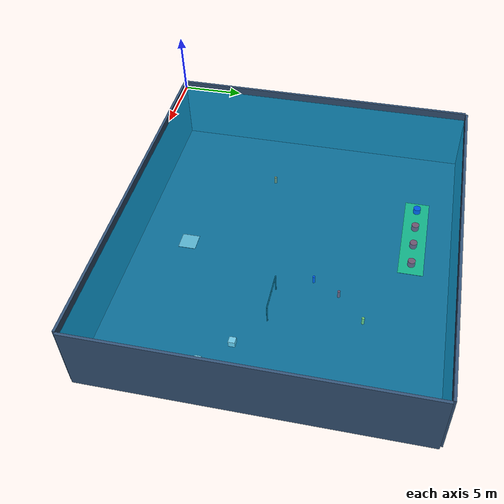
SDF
<?xml version="1.0" ?>
<sdf version="1.9">
  <world name="auv_pool_world">

    <!-- ============================================================
         PHYSICS & PLUGINS
    ============================================================ -->
    <gravity>0 0 -9.81</gravity>
    <physics name="4ms" type="ignored">
      <max_step_size>0.004</max_step_size>
      <real_time_factor>1.0</real_time_factor>
    </physics>

    <plugin filename="gz-sim-physics-system" name="gz::sim::systems::Physics"/>
    <plugin filename="gz-sim-scene-broadcaster-system" name="gz::sim::systems::SceneBroadcaster"/>
    <plugin filename="gz-sim-user-commands-system" name="gz::sim::systems::UserCommands"/>
    <plugin filename="gz-sim-sensors-system" name="gz::sim::systems::Sensors">
      <render_engine>ogre2</render_engine>
    </plugin>
    <plugin filename="gz-sim-buoyancy-system" name="gz::sim::systems::Buoyancy">
      <graded_buoyancy>
        <default_density>1025</default_density>
        <density_change>
          <above_depth>0</above_depth>
          <density>1</density>
        </density_change>
      </graded_buoyancy>
      <enable>auv_box::buoyancy_link</enable>
    </plugin>

    <!-- ============================================================
         SCENE & LIGHTING
    ============================================================ -->
    <scene>
      <ambient>0.35 0.55 0.75 1</ambient>
      <background>0.05 0.25 0.45 1</background>
      <shadows>true</shadows>
      <fog>
        <type>linear</type>
        <color>0.05 0.25 0.50 1.0</color>
        <start>4.0</start>
        <end>28.0</end>
      </fog>
    </scene>

    <light type="directional" name="sun">
      <pose>14 12.5 20 0 0.4 0</pose>
      <diffuse>0.9 0.95 1.0 1</diffuse>
      <specular>0.3 0.35 0.4 1</specular>
      <direction>-0.2 0.1 -1</direction>
      <cast_shadows>true</cast_shadows>
    </light>

    <light type="point" name="fill_light">
      <pose>14 12.5 -1 0 0 0</pose>
      <diffuse>0.3 0.5 0.7 1</diffuse>
      <specular>0.1 0.15 0.2 1</specular>
      <attenuation>
        <range>40</range>
        <constant>0.5</constant>
        <linear>0.01</linear>
        <quadratic>0.001</quadratic>
      </attenuation>
    </light>

    <!-- ============================================================
         POOL ARCHITECTURE (28m X, 25m Y)
    ============================================================ -->
    <model name="pool_floor">
      <static>true</static>
      <pose>14 12.5 -5.1 0 0 0</pose>
      <link name="link">
        <collision name="floor_collision">
          <geometry><box><size>28 25 0.2</size></box></geometry>
        </collision>
        <visual name="floor_visual">
          <geometry><box><size>28 25 0.2</size></box></geometry>
          <material>
            <ambient>0.12 0.18 0.25 1</ambient>
            <diffuse>0.15 0.22 0.32 1</diffuse>
          </material>
        </visual>
      </link>
    </model>

    <!-- North Wall (Top of map) — 5.6 m tall: -5..+0.6, 0.6 m dry rim above waterline -->
    <model name="pool_wall_north">
      <static>true</static>
      <pose>14 25.1 -2.2 0 0 0</pose>
      <link name="link">
        <collision name="wall_collision"><geometry><box><size>28 0.2 5.6</size></box></geometry></collision>
        <visual name="wall_visual"><geometry><box><size>28 0.2 5.6</size></box></geometry>
          <material><ambient>0.18 0.28 0.40 1</ambient><diffuse>0.20 0.32 0.46 1</diffuse></material>
        </visual>
      </link>
    </model>

    <!-- South Wall (Bottom of map) — 5.6 m tall: -5..+0.6 -->
    <model name="pool_wall_south">
      <static>true</static>
      <pose>14 -0.1 -2.2 0 0 0</pose>
      <link name="link">
        <collision name="wall_collision"><geometry><box><size>28 0.2 5.6</size></box></geometry></collision>
        <visual name="wall_visual"><geometry><box><size>28 0.2 5.6</size></box></geometry>
          <material><ambient>0.18 0.28 0.40 1</ambient><diffuse>0.20 0.32 0.46 1</diffuse></material>
        </visual>
      </link>
    </model>

    <!-- East Wall (Right of map) — 5.6 m tall: -5..+0.6 -->
    <model name="pool_wall_east">
      <static>true</static>
      <pose>28.1 12.5 -2.2 0 0 0</pose>
      <link name="link">
        <collision name="wall_collision"><geometry><box><size>0.2 25 5.6</size></box></geometry></collision>
        <visual name="wall_visual"><geometry><box><size>0.2 25 5.6</size></box></geometry>
          <material><ambient>0.18 0.28 0.40 1</ambient><diffuse>0.20 0.32 0.46 1</diffuse></material>
        </visual>
      </link>
    </model>

    <!-- West Wall (Left of map) — 5.6 m tall: -5..+0.6 -->
    <model name="pool_wall_west">
      <static>true</static>
      <pose>-0.1 12.5 -2.2 0 0 0</pose>
      <link name="link">
        <collision name="wall_collision"><geometry><box><size>0.2 25 5.6</size></box></geometry></collision>
        <visual name="wall_visual"><geometry><box><size>0.2 25 5.6</size></box></geometry>
          <material><ambient>0.18 0.28 0.40 1</ambient><diffuse>0.20 0.32 0.46 1</diffuse></material>
        </visual>
      </link>
    </model>

    <model name="water_surface">
      <static>true</static>
      <pose>14 12.5 0 0 0 0</pose>
      <link name="link">
        <visual name="water_surface_visual">
          <geometry><plane><normal>0 0 1</normal><size>28 25</size></plane></geometry>
          <material>
            <ambient>0.05 0.35 0.70 1.0</ambient>
            <diffuse>0.10 0.45 0.80 1.0</diffuse>
          </material>
          <transparency>0.35</transparency>
        </visual>
      </link>
    </model>

    <model name="water_volume">
      <static>true</static>
      <pose>14 12.5 -2.5 0 0 0</pose>
      <link name="link">
        <visual name="water_body_visual">
          <geometry><box><size>27.96 24.96 4.96</size></box></geometry>
          <material>
            <ambient>0.00 0.42 0.58 1.0</ambient>
            <diffuse>0.00 0.62 0.82 1.0</diffuse>
            <specular>0.05 0.10 0.15 1</specular>
            <double_sided>true</double_sided>
            <render_order>5</render_order>
          </material>
          <transparency>0.45</transparency>
          <cast_shadows>false</cast_shadows>
        </visual>
      </link>
    </model>

    <!-- ============================================================
         COMPETITION PROPS (Based on image_652e51.png)
    ============================================================ -->

    <!-- Starting Zone (140cm square, 4m from bottom) -->
    <model name="starting_zone">
      <static>true</static>
      <pose>14 4 -4.99 0 0 0</pose> <!-- Placed slightly above floor to prevent z-fighting -->
      <link name="link">
        <visual name="visual">
          <geometry><box><size>1.4 1.4 0.02</size></box></geometry>
          <material><ambient>0.8 0.8 0.8 1</ambient><diffuse>0.8 0.8 0.8 1</diffuse></material>
        </visual>
      </link>
    </model>

    <!-- Gate (Shifted right by 5m, located exactly on the 12m Y line) -->
    <model name="gate">
      <static>true</static>

      <!-- Left Post (Black) -->
      <link name="left_post">
        <pose>17.5 12 -4.238 0 0 0</pose>
        <collision name="collision"><geometry><cylinder><radius>0.05</radius><length>1.524</length></cylinder></geometry></collision>
        <visual name="visual">
          <geometry><cylinder><radius>0.05</radius><length>1.524</length></cylinder></geometry>
          <material><ambient>0 0 0 1</ambient><diffuse>0 0 0 1</diffuse></material>
        </visual>
      </link>

      <!-- Right Post (Black) -->
      <link name="right_post">
        <pose>20.5 12 -4.238 0 0 0</pose>
        <collision name="collision"><geometry><cylinder><radius>0.05</radius><length>1.524</length></cylinder></geometry></collision>
        <visual name="visual">
          <geometry><cylinder><radius>0.05</radius><length>1.524</length></cylinder></geometry>
          <material><ambient>0 0 0 1</ambient><diffuse>0 0 0 1</diffuse></material>
        </visual>
      </link>

      <!-- Cross Bar (Black) -->
      <link name="cross_bar">
        <pose>19 12 -3.476 0 1.57079632679 0</pose>
        <collision name="collision"><geometry><cylinder><radius>0.05</radius><length>3.1</length></cylinder></geometry></collision>
        <visual name="visual">
          <geometry><cylinder><radius>0.05</radius><length>3.1</length></cylinder></geometry>
          <material><ambient>0 0 0 1</ambient><diffuse>0 0 0 1</diffuse></material>
        </visual>
      </link>
    </model>

    <!-- Orange Flare (Located in the 8m-12m zone) -->
    <model name="flare_orange">
      <static>true</static>
      <pose>8 10 -2.5 0 0 0</pose> <!-- Mid-depth hover -->
      <link name="link">
        <visual name="visual">
          <geometry><cylinder><radius>0.1</radius><length>0.6</length></cylinder></geometry>
          <material><ambient>1 0.5 0 1</ambient><diffuse>1 0.5 0 1</diffuse></material>
        </visual>
      </link>
    </model>

    <!-- Blue Flare (Main Arena) -->
    <model name="flare_blue">
      <static>true</static>
      <pose>18 15 -2.5 0 0 0</pose>
      <link name="link">
        <visual name="visual">
          <geometry><cylinder><radius>0.1</radius><length>0.6</length></cylinder></geometry>
          <material><ambient>0 0 1 1</ambient><diffuse>0 0 1 1</diffuse></material>
        </visual>
      </link>
    </model>

    <!-- Red Flare (Main Arena) -->
    <model name="flare_red">
      <static>true</static>
      <pose>19 17 -2.5 0 0 0</pose>
      <link name="link">
        <visual name="visual">
          <geometry><cylinder><radius>0.1</radius><length>0.6</length></cylinder></geometry>
          <material><ambient>1 0 0 1</ambient><diffuse>1 0 0 1</diffuse></material>
        </visual>
      </link>
    </model>

    <!-- Yellow Flare (Main Arena) -->
    <model name="flare_yellow">
      <static>true</static>
      <pose>21 19 -2.5 0 0 0</pose>
      <link name="link">
        <visual name="visual">
          <geometry><cylinder><radius>0.1</radius><length>0.6</length></cylinder></geometry>
          <material><ambient>1 1 0 1</ambient><diffuse>1 1 0 1</diffuse></material>
        </visual>
      </link>
    </model>

    <!-- Target Zone (8m x 2m Green Mat at the far end) -->
    <model name="target_zone">
      <static>true</static>
      <pose>10 22 -4.99 0 0 0</pose> <!-- X=10 to offset it leftish as in diagram -->
      <link name="link">
        <visual name="visual">
          <geometry><box><size>8 2 0.02</size></box></geometry>
          <material><ambient>0.2 0.8 0.2 1</ambient><diffuse>0.2 0.8 0.2 1</diffuse></material>
        </visual>
      </link>
    </model>

    <!-- Target Zone Drums (1 Blue, 3 Red) -->
    <model name="drum_blue">
      <static>true</static>
      <pose>7 22 -4.75 0 0 0</pose>
      <link name="link">
        <visual name="visual">
          <geometry><cylinder><radius>0.3</radius><length>0.5</length></cylinder></geometry>
          <material><ambient>0 0 1 1</ambient><diffuse>0 0 1 1</diffuse></material>
        </visual>
      </link>
    </model>

    <model name="drum_red_1">
      <static>true</static>
      <pose>9 22 -4.75 0 0 0</pose>
      <link name="link">
        <visual name="visual">
          <geometry><cylinder><radius>0.3</radius><length>0.5</length></cylinder></geometry>
          <material><ambient>1 0 0 1</ambient><diffuse>1 0 0 1</diffuse></material>
        </visual>
      </link>
    </model>

    <model name="drum_red_2">
      <static>true</static>
      <pose>11 22 -4.75 0 0 0</pose>
      <link name="link">
        <visual name="visual">
          <geometry><cylinder><radius>0.3</radius><length>0.5</length></cylinder></geometry>
          <material><ambient>1 0 0 1</ambient><diffuse>1 0 0 1</diffuse></material>
        </visual>
      </link>
    </model>

    <model name="drum_red_3">
      <static>true</static>
      <pose>13 22 -4.75 0 0 0</pose>
      <link name="link">
        <visual name="visual">
          <geometry><cylinder><radius>0.3</radius><length>0.5</length></cylinder></geometry>
          <material><ambient>1 0 0 1</ambient><diffuse>1 0 0 1</diffuse></material>
        </visual>
      </link>
    </model>

    <!-- QR-Coded Objects (Approximated as boxes on the right side) -->
    <model name="qr_box_1">
      <static>true</static>
      <pose>23 10 -4.75 0 0 0</pose>
      <link name="link">
        <visual name="visual">
          <geometry><box><size>0.5 0.5 0.5</size></box></geometry>
          <material><ambient>1 1 1 1</ambient><diffuse>1 1 1 1</diffuse></material>
        </visual>
      </link>
    </model>

    <model name="qr_box_2">
      <static>true</static>
      <pose>25 8 -4.75 0 0 0</pose>
      <link name="link">
        <visual name="visual">
          <geometry><box><size>0.5 0.5 0.5</size></box></geometry>
          <material><ambient>1 1 1 1</ambient><diffuse>1 1 1 1</diffuse></material>
        </visual>
      </link>
    </model>

  </world>
</sdf>
